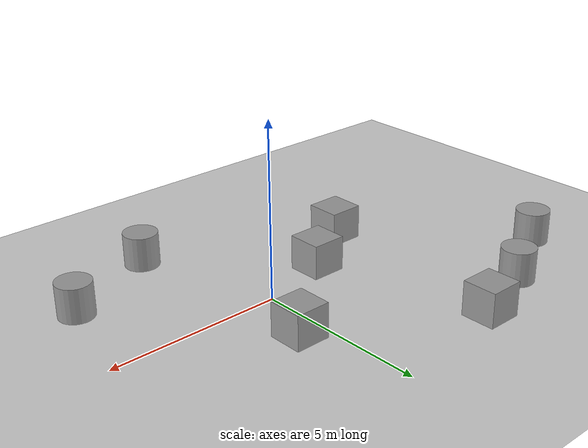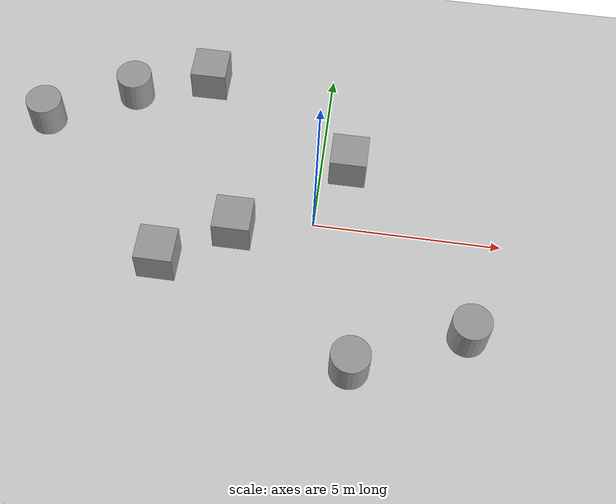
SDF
<sdf version="1.6">
 <world name="default">
  <light name="sun" type="directional">
   <pose>0 0 10 0 -0 0</pose>
   <diffuse>0.8 0.8 0.8 1</diffuse>
   <specular>0.1 0.1 0.1 1</specular>
   <attenuation>
    <range>1000</range>
    <constant>0.9</constant>
    <linear>0.01</linear>
    <quadratic>0.001</quadratic>
   </attenuation>
   <direction>-0.5 0.5 -1</direction>
  </light>
  <model name="ground_plane">
   <static>1</static>
   <link name="link">
    <collision name="collision">
     <geometry><plane><normal>0 0 1</normal><size>100 100</size></plane></geometry>
     <surface><friction><ode><mu>100</mu><mu2>50</mu2></ode></friction></surface>
    </collision>
    <visual name="visual">
     <cast_shadows>0</cast_shadows>
     <geometry><plane><normal>0 0 1</normal><size>100 100</size></plane></geometry>
     <material>
      <script><uri>file://media/materials/scripts/gazebo.material</uri><name>Gazebo/Grey</name></script>
     </material>
    </visual>
   </link>
  </model>
  <gravity>0 0 -9.8</gravity>
  <magnetic_field>6e-06 2.3e-05 -4.2e-05</magnetic_field>
  <atmosphere type="adiabatic"/>
  <physics name="default_physics" default="0" type="ode">
   <max_step_size>0.001</max_step_size>
   <real_time_factor>1</real_time_factor>
   <real_time_update_rate>1000</real_time_update_rate>
  </physics>
  <scene><ambient>0.4 0.4 0.4 1</ambient><background>0.7 0.7 0.7 1</background><shadows>1</shadows></scene>
  <spherical_coordinates>
   <surface_model>EARTH_WGS84</surface_model>
   <latitude_deg>0</latitude_deg>
   <longitude_deg>0</longitude_deg>
   <elevation>0</elevation>
   <heading_deg>0</heading_deg>
  </spherical_coordinates>
  <model name="unit_box_0">
   <pose>-3.88471 -1.6966 0.499995 -1e-05 0 0</pose>
   <link name="link">
    <inertial>
     <mass>1</mass>
     <inertia>
      <ixx>0.166667</ixx>
      <ixy>0</ixy>
      <ixz>0</ixz>
      <iyy>0.166667</iyy>
      <iyz>0</iyz>
      <izz>0.166667</izz>
     </inertia>
    </inertial>
    <collision name="collision"><geometry><box><size>1 1 1</size></box></geometry></collision>
    <visual name="visual">
     <geometry><box><size>1 1 1</size></box></geometry>
     <material>
      <script><name>Gazebo/Grey</name><uri>file://media/materials/scripts/gazebo.material</uri></script>
     </material>
    </visual>
   </link>
  </model>
  <model name="unit_box_1">
   <pose>-2.08223 -0.515556 0.499995 0 1e-05 0</pose>
   <link name="link">
    <inertial>
     <mass>1</mass>
     <inertia>
      <ixx>0.166667</ixx>
      <ixy>0</ixy>
      <ixz>0</ixz>
      <iyy>0.166667</iyy>
      <iyz>0</iyz>
      <izz>0.166667</izz>
     </inertia>
    </inertial>
    <collision name="collision"><geometry><box><size>1 1 1</size></box></geometry></collision>
    <visual name="visual">
     <geometry><box><size>1 1 1</size></box></geometry>
     <material>
      <script><name>Gazebo/Grey</name><uri>file://media/materials/scripts/gazebo.material</uri></script>
     </material>
    </visual>
   </link>
  </model>
  <model name="unit_cylinder_0">
   <pose>-5.64441 3.6906 0.499998 3e-06 -4e-06 0</pose>
   <link name="link">
    <inertial>
     <mass>1</mass>
     <inertia><ixx>0.145833</ixx><ixy>0</ixy><ixz>0</ixz><iyy>0.145833</iyy><iyz>0</iyz><izz>0.125</izz></inertia>
    </inertial>
    <collision name="collision">
     <geometry><cylinder><radius>0.5</radius><length>1</length></cylinder></geometry>
    </collision>
    <visual name="visual">
     <geometry><cylinder><radius>0.5</radius><length>1</length></cylinder></geometry>
     <material>
      <script><name>Gazebo/Grey</name><uri>file://media/materials/scripts/gazebo.material</uri></script>
     </material>
    </visual>
   </link>
  </model>
  <model name="unit_box_2">
   <pose>-3.54539 4.41906 0.499995 0 1e-05 0</pose>
   <link name="link">
    <inertial>
     <mass>1</mass>
     <inertia>
      <ixx>0.166667</ixx>
      <ixy>0</ixy>
      <ixz>0</ixz>
      <iyy>0.166667</iyy>
      <iyz>0</iyz>
      <izz>0.166667</izz>
     </inertia>
    </inertial>
    <collision name="collision"><geometry><box><size>1 1 1</size></box></geometry></collision>
    <visual name="visual">
     <geometry><box><size>1 1 1</size></box></geometry>
     <material>
      <script><name>Gazebo/Grey</name><uri>file://media/materials/scripts/gazebo.material</uri></script>
     </material>
    </visual>
   </link>
  </model>
  <model name="unit_box_3">
   <pose>0.735009 1.90769 0.499995 -1e-05 0 0</pose>
   <link name="link">
    <inertial>
     <mass>1</mass>
     <inertia>
      <ixx>0.166667</ixx>
      <ixy>0</ixy>
      <ixz>0</ixz>
      <iyy>0.166667</iyy>
      <iyz>0</iyz>
      <izz>0.166667</izz>
     </inertia>
    </inertial>
    <collision name="collision"><geometry><box><size>1 1 1</size></box></geometry></collision>
    <visual name="visual">
     <geometry><box><size>1 1 1</size></box></geometry>
     <material>
      <script><name>Gazebo/Grey</name><uri>file://media/materials/scripts/gazebo.material</uri></script>
     </material>
    </visual>
   </link>
  </model>
  <model name="unit_cylinder_1">
   <pose>-7.96275 2.44707 0.499997 3e-06 4e-06 -0</pose>
   <link name="link">
    <inertial>
     <mass>1</mass>
     <inertia><ixx>0.145833</ixx><ixy>0</ixy><ixz>0</ixz><iyy>0.145833</iyy><iyz>0</iyz><izz>0.125</izz></inertia>
    </inertial>
    <collision name="collision">
     <geometry><cylinder><radius>0.5</radius><length>1</length></cylinder></geometry>
    </collision>
    <visual name="visual">
     <geometry><cylinder><radius>0.5</radius><length>1</length></cylinder></geometry>
     <material>
      <script><name>Gazebo/Grey</name><uri>file://media/materials/scripts/gazebo.material</uri></script>
     </material>
    </visual>
   </link>
  </model>
  <model name="unit_cylinder_2">
   <pose>1.36375 -4.06137 0.499993 -3e-06 -4e-06 -0</pose>
   <link name="link">
    <inertial>
     <mass>1</mass>
     <inertia><ixx>0.145833</ixx><ixy>0</ixy><ixz>0</ixz><iyy>0.145833</iyy><iyz>0</iyz><izz>0.125</izz></inertia>
    </inertial>
    <collision name="collision">
     <geometry><cylinder><radius>0.5</radius><length>1</length></cylinder></geometry>
    </collision>
    <visual name="visual">
     <geometry><cylinder><radius>0.5</radius><length>1</length></cylinder></geometry>
     <material>
      <script><name>Gazebo/Grey</name><uri>file://media/materials/scripts/gazebo.material</uri></script>
     </material>
    </visual>
   </link>
  </model>
  <model name="unit_cylinder_3">
   <pose>4.21793 -2.78756 0.499997 3e-06 4e-06 -0</pose>
   <link name="link">
    <inertial>
     <mass>1</mass>
     <inertia><ixx>0.145833</ixx><ixy>0</ixy><ixz>0</ixz><iyy>0.145833</iyy><iyz>0</iyz><izz>0.125</izz></inertia>
    </inertial>
    <collision name="collision">
     <geometry><cylinder><radius>0.5</radius><length>1</length></cylinder></geometry>
    </collision>
    <visual name="visual">
     <geometry><cylinder><radius>0.5</radius><length>1</length></cylinder></geometry>
     <material>
      <script><name>Gazebo/Grey</name><uri>file://media/materials/scripts/gazebo.material</uri></script>
     </material>
    </visual>
   </link>
  </model>
 </world>
</sdf>
